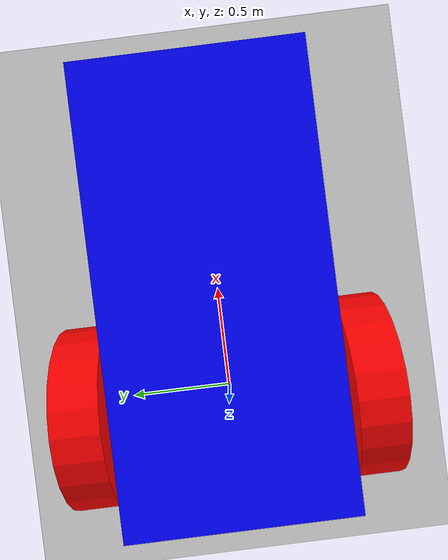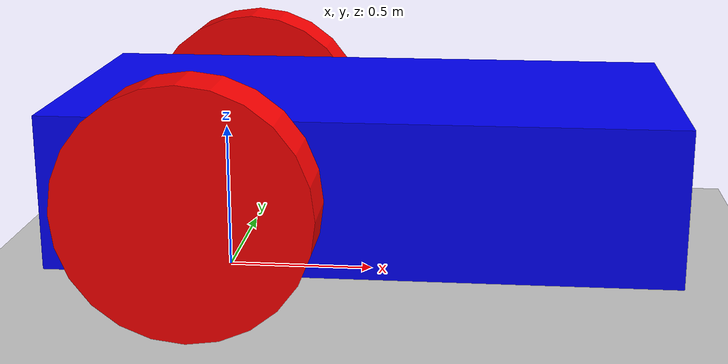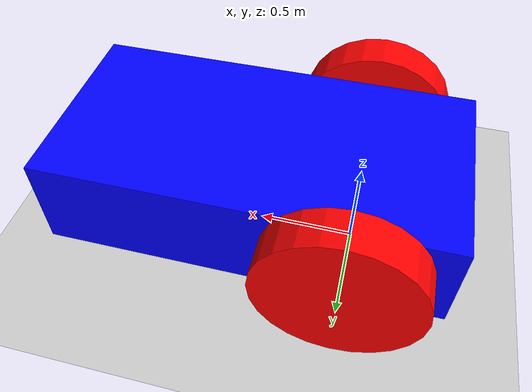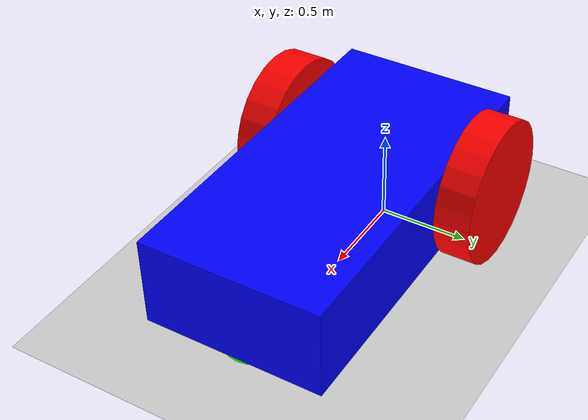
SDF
<?xml version="1.0" ?>
<sdf version="1.10">
    <!-- Define la versión del formato SDF (Simulation Description Format) -->
    <world name="car_world">
        <!-- Define un mundo llamado "car_world" -->
        <physics name="1ms" type="ignored">
            <!-- Configura las propiedades físicas del mundo -->
            <max_step_size>0.001</max_step_size>
            <!-- Tamaño máximo del paso de simulación -->
            <real_time_factor>1.0</real_time_factor>
            <!-- Factor de tiempo real (1.0 significa tiempo real) -->
        </physics>
        <plugin
            filename="gz-sim-physics-system"
            name="gz::sim::systems::Physics">
        </plugin>
        <!-- Plugin para el sistema de física -->
        <plugin
            filename="gz-sim-user-commands-system"
            name="gz::sim::systems::UserCommands">
        </plugin>
        <!-- Plugin para comandos de usuario -->
        <plugin
            filename="gz-sim-scene-broadcaster-system"
            name="gz::sim::systems::SceneBroadcaster">
        </plugin>
        <!-- Plugin para la difusión de la escena -->

        <light type="directional" name="sun">
            <!-- Define una luz direccional llamada "sun" -->
            <cast_shadows>true</cast_shadows>
            <!-- Habilita la proyección de sombras -->
            <pose>0 0 10 0 0 0</pose>
            <!-- Posición y orientación de la luz -->
            <diffuse>0.8 0.8 0.8 1</diffuse>
            <!-- Color difuso de la luz -->
            <specular>0.2 0.2 0.2 1</specular>
            <!-- Color especular de la luz -->
            <attenuation>
                <range>1000</range>
                <!-- Rango de atenuación de la luz -->
                <constant>0.9</constant>
                <!-- Atenuación constante -->
                <linear>0.01</linear>
                <!-- Atenuación lineal -->
                <quadratic>0.001</quadratic>
                <!-- Atenuación cuadrática -->
            </attenuation>
            <direction>-0.5 0.1 -0.9</direction>
            <!-- Dirección de la luz -->
        </light>

        <!-- Plugin para los sensores IMU -->
        <plugin
            filename="libignition-gazebo-imu-system.so"
            name="ignition::gazebo::systems::Imu">
        </plugin>

        <plugin
            filename="gz-sim-contact-system"
            name="gz::sim::systems::Contact">
        </plugin>

        <!-- Configuración de la interfaz gráfica -->
        <gui fullscreen="0">
            <!-- Plugin para la vista 3D de la simulación -->
            <plugin filename="GzScene3D" name="3D View">
                <ignition-gui>
                    <!-- Título de la ventana de la vista 3D -->
                    <title>3D View</title>
                    <!-- Propiedad para ocultar la barra de título -->
                    <property type="bool" key="showTitleBar">false</property>
                    <!-- Estado de la ventana (docked significa acoplada) -->
                    <property type="string" key="state">docked</property>
                </ignition-gui>

                <!-- Configuración del motor gráfico y la escena -->
                <!-- Motor gráfico utilizado (ogre2) -->
                <engine>ogre2</engine>
                <scene>
                    <!-- Luz ambiental de la escena -->
                    <ambient_light>0.1 0.1 0.1 1</ambient_light>
                    <!-- Color de fondo de la escena -->
                    <background_color>0.7 0.7 0.7 1</background_color>
                </scene>
            </plugin>

            <!-- Plugin para el control del mundo -->
            <plugin filename="WorldControl" name="World Control">
                <ignition-gui>
                    <!-- Título de la ventana de control del mundo -->
                    <title>World Control</title>
                    <!-- Propiedad para ocultar la barra de título -->
                    <property type="bool" key="showTitleBar">false</property>
                    <!-- Propiedad para desactivar el redimensionamiento -->
                    <property type="bool" key="reziable">false</property>
                    <!-- Altura de la ventana -->
                    <property type="double" key="height">72</property>
                    <!-- Ancho de la ventana -->
                    <property type="double" key="width">121</property>
                    <!-- Profundidad de la ventana (z-index) -->
                    <property type="double" key="z">1</property>
                    <!-- Estado de la ventana (floating significa flotante) -->
                    <property type="string" key="state">floating</property>
                    <!-- Anclaje de la ventana al objetivo "3D View" -->
                    <anchor target="3D View">
                        <!-- Línea de anclaje a la derecha -->
                        <line own="left" target="left"/>
                        <!-- Línea de anclaje en la parte inferior -->
                        <line own="bottom" target="bottom"/>
                    </anchor>
                </ignition-gui>

                <!-- Botón de play/pause -->
                <play_pause>true</play_pause>
                <!-- Botón de paso a paso -->
                <step>true</step>
                <!-- Iniciar en pausa -->
                <start_paused>true</start_paused>
                <!-- Servicio de control del mundo -->
                <service>/world/world_demo/control</service>
                <!-- Tópico de estadísticas del mundo -->
                <stats_topic>/world/world_demo/stats</stats_topic>
            </plugin>

            <!-- Plugin para las estadísticas del mundo -->
            <plugin filename="WorldStats" name="World Stats">
                <ignition-gui>
                    <!-- Título de la ventana de estadísticas del mundo -->
                    <title>World Stats</title>
                    <!-- Propiedad para ocultar la barra de título -->
                    <property type="bool" key="showTitleBar">false</property>
                    <!-- Propiedad para desactivar el redimensionamiento -->
                    <property type="bool" key="resizable">false</property>
                    <!-- Altura de la ventana -->
                    <property type="double" key="height">110</property>
                    <!-- Ancho de la ventana -->
                    <property type="double" key="width">290</property>
                    <!-- Profundidad de la ventana (z-index) -->
                    <property type="double" key="z">1</property>
                    <!-- Estado de la ventana (floating significa flotante) -->
                    <property type="string" key="state">floating</property>
                    <!-- Anclaje de la ventana al objetivo "3D View" -->
                    <anchor target="3D View">
                        <!-- Línea de anclaje a la derecha -->
                        <line own="right" target="right"/>
                        <!-- Línea de anclaje en la parte inferior -->
                        <line own="bottom" target="bottom"/>
                    </anchor>
                </ignition-gui>

                <!-- Mostrar tiempo de simulación -->
                <sim_time>true</sim_time>
                <!-- Mostrar tiempo real -->
                <real_time>true</real_time>
                <!-- Mostrar factor de tiempo real -->
                <real_time_factor>true</real_time_factor>
                <!-- Mostrar número de iteraciones -->
                <interations>true</interations>
                <!-- Tópico de estadísticas del mundo -->
                <topic>/world/world_demo/stats</topic>
            </plugin>

            <!-- Plugin para el árbol de entidades -->
            <plugin filename="EntityTree" name="Entity tree">
            </plugin>

            <plugin filename="keyPublisher" name="Key Publisher">
            </plugin>

        </gui>

        <model name="ground_plane">
            <!-- Define un modelo llamado "ground_plane" -->
            <static>true</static>
            <!-- Indica que el modelo es estático -->
            <link name="link">
                <!-- Define un enlace llamado "link" -->
                <collision name="collision">
                    <!-- Define una colisión llamada "collision" -->
                    <geometry>
                        <plane>
                            <!-- Define la geometría como un plano -->
                            <normal>0 0 1</normal>
                            <!-- Normal del plano -->
                        </plane>
                    </geometry>
                </collision>
                <visual name="visual">
                    <!-- Define una visualización llamada "visual" -->
                    <geometry>
                        <plane>
                            <!-- Define la geometría como un plano -->
                            <normal>0 0 1</normal>
                            <!-- Normal del plano -->
                            <size>100 100</size>
                            <!-- Tamaño del plano -->
                        </plane>
                    </geometry>
                    <material>
                        <!-- Define el material del plano -->
                        <ambient>0.8 0.8 0.8 1</ambient>
                        <!-- Color ambiental -->
                        <diffuse>0.8 0.8 0.8 1</diffuse>
                        <!-- Color difuso -->
                        <specular>0.8 0.8 0.8 1</specular>
                        <!-- Color especular -->
                    </material>
                </visual>
            </link>
        </model>

        <model name='vehicle_blue' canonical_link='chassis'>
            <!-- Define un modelo llamado "vehicle_blue" con un enlace canónico "chassis" -->
            <pose relative_to='world'>0 0 0 0 0 0</pose>
            <!-- Posición y orientación del modelo relativo al mundo -->

            <link name='chassis'>
                <!-- Define un enlace llamado "chassis" -->
                <pose relative_to='__model__'>0.5 0 0.4 0 0 0</pose>
                <!-- Posición y orientación del enlace relativo al modelo -->
                <inertial>
                    <!-- Propiedades inerciales del enlace -->
                    <mass>1.14395</mass>
                    <!-- Masa del enlace -->
                    <inertia>
                        <!-- Matriz de inercia -->
                        <ixx>0.095329</ixx>
                        <ixy>0</ixy>
                        <ixz>0</ixz>
                        <iyy>0.381317</iyy>
                        <iyz>0</iyz>
                        <izz>0.476646</izz>
                    </inertia>
                </inertial>
                <visual name='visual'>
                    <!-- Define una visualización llamada "visual" -->
                    <geometry>
                        <box>
                            <!-- Define la geometría como una caja -->
                            <size>2.0 1.0 0.5</size>
                            <!-- Tamaño de la caja -->
                        </box>
                    </geometry>
                    <material>
                        <!-- Define el material de la caja -->
                        <ambient>0.0 0.0 1.0 1</ambient>
                        <!-- Color ambiental -->
                        <diffuse>0.0 0.0 1.0 1</diffuse>
                        <!-- Color difuso -->
                        <specular>0.0 0.0 1.0 1</specular>
                        <!-- Color especular -->
                    </material>
                </visual>
                <collision name='collision'>
                    <!-- Define una colisión llamada "collision" -->
                    <geometry>
                        <box>
                            <!-- Define la geometría como una caja -->
                            <size>2.0 1.0 0.5</size>
                            <!-- Tamaño de la caja -->
                        </box>
                    </geometry>
                </collision>
            </link>

            <link name='left_wheel'>
                <!-- Define un enlace llamado "left_wheel" -->
                <pose relative_to="chassis">-0.5 0.6 0 -1.5707 0 0</pose>
                <!-- Posición y orientación del enlace relativo al chasis -->
                <inertial>
                    <!-- Propiedades inerciales del enlace -->
                    <mass>1</mass>
                    <!-- Masa del enlace -->
                    <inertia>
                        <!-- Matriz de inercia -->
                        <ixx>0.043333</ixx>
                        <ixy>0</ixy>
                        <ixz>0</ixz>
                        <iyy>0.043333</iyy>
                        <iyz>0</iyz>
                        <izz>0.08</izz>
                    </inertia>
                </inertial>
                <visual name='visual'>
                    <!-- Define una visualización llamada "visual" -->
                    <geometry>
                        <cylinder>
                            <!-- Define la geometría como un cilindro -->
                            <radius>0.4</radius>
                            <!-- Radio del cilindro -->
                            <length>0.2</length>
                            <!-- Longitud del cilindro -->
                        </cylinder>
                    </geometry>
                    <material>
                        <!-- Define el material del cilindro -->
                        <ambient>1.0 0.0 0.0 1</ambient>
                        <!-- Color ambiental -->
                        <diffuse>1.0 0.0 0.0 1</diffuse>
                        <!-- Color difuso -->
                        <specular>1.0 0.0 0.0 1</specular>
                        <!-- Color especular -->
                    </material>
                </visual>
                <collision name='collision'>
                    <!-- Define una colisión llamada "collision" -->
                    <geometry>
                        <cylinder>
                            <!-- Define la geometría como un cilindro -->
                            <radius>0.4</radius>
                            <!-- Radio del cilindro -->
                            <length>0.2</length>
                            <!-- Longitud del cilindro -->
                        </cylinder>
                    </geometry>
                </collision>
            </link>

            <link name='right_wheel'>
                <!-- Define un enlace llamado "right_wheel" -->
                <pose relative_to="chassis">-0.5 -0.6 0 -1.5707 0 0</pose>
                <!-- Posición y orientación del enlace relativo al chasis -->
                <inertial>
                    <!-- Propiedades inerciales del enlace -->
                    <mass>1</mass>
                    <!-- Masa del enlace -->
                    <inertia>
                        <!-- Matriz de inercia -->
                        <ixx>0.043333</ixx>
                        <ixy>0</ixy>
                        <ixz>0</ixz>
                        <iyy>0.043333</iyy>
                        <iyz>0</iyz>
                        <izz>0.08</izz>
                    </inertia>
                </inertial>
                <visual name='visual'>
                    <!-- Define una visualización llamada "visual" -->
                    <geometry>
                        <cylinder>
                            <!-- Define la geometría como un cilindro -->
                            <radius>0.4</radius>
                            <!-- Radio del cilindro -->
                            <length>0.2</length>
                            <!-- Longitud del cilindro -->
                        </cylinder>
                    </geometry>
                    <material>
                        <!-- Define el material del cilindro -->
                        <ambient>1.0 0.0 0.0 1</ambient>
                        <!-- Color ambiental -->
                        <diffuse>1.0 0.0 0.0 1</diffuse>
                        <!-- Color difuso -->
                        <specular>1.0 0.0 0.0 1</specular>
                        <!-- Color especular -->
                    </material>
                </visual>
                <collision name='collision'>
                    <!-- Define una colisión llamada "collision" -->
                    <geometry>
                        <cylinder>
                            <!-- Define la geometría como un cilindro -->
                            <radius>0.4</radius>
                            <!-- Radio del cilindro -->
                            <length>0.2</length>
                            <!-- Longitud del cilindro -->
                        </cylinder>
                    </geometry>
                </collision>
            </link>

            <frame name="caster_frame" attached_to='chassis'>
                <!-- Define un marco llamado "caster_frame" adjunto al chasis -->
                <pose>0.8 0 -0.2 0 0 0</pose>
                <!-- Posición y orientación del marco -->
            </frame>

            <link name='caster'>
                <!-- Define un enlace llamado "caster" -->
                <pose relative_to='caster_frame'/>
                <!-- Posición y orientación del enlace relativo al marco del caster -->
                <inertial>
                    <!-- Propiedades inerciales del enlace -->
                    <mass>1</mass>
                    <!-- Masa del enlace -->
                    <inertia>
                        <!-- Matriz de inercia -->
                        <ixx>0.016</ixx>
                        <ixy>0</ixy>
                        <ixz>0</ixz>
                        <iyy>0.016</iyy>
                        <iyz>0</iyz>
                        <izz>0.016</izz>
                    </inertia>
                </inertial>
                <visual name='visual'>
                    <!-- Define una visualización llamada "visual" -->
                    <geometry>
                        <sphere>
                            <!-- Define la geometría como una esfera -->
                            <radius>0.2</radius>
                            <!-- Radio de la esfera -->
                        </sphere>
                    </geometry>
                    <material>
                        <!-- Define el material de la esfera -->
                        <ambient>0.0 1 0.0 1</ambient>
                        <!-- Color ambiental -->
                        <diffuse>0.0 1 0.0 1</diffuse>
                        <!-- Color difuso -->
                        <specular>0.0 1 0.0 1</specular>
                        <!-- Color especular -->
                    </material>
                </visual>
                <collision name='collision'>
                    <!-- Define una colisión llamada "collision" -->
                    <geometry>
                        <sphere>
                            <!-- Define la geometría como una esfera -->
                            <radius>0.2</radius>
                            <!-- Radio de la esfera -->
                        </sphere>
                    </geometry>
                </collision>
            </link>

            <joint name='left_wheel_joint' type='revolute'>
                <!-- Define una articulación llamada "left_wheel_joint" de tipo "revolute" -->
                <pose relative_to='left_wheel'/>
                <!-- Posición y orientación de la articulación relativa a la rueda izquierda -->
                <parent>chassis</parent>
                <!-- Enlace padre de la articulación -->
                <child>left_wheel</child>
                <!-- Enlace hijo de la articulación -->
                <axis>
                    <!-- Define el eje de la articulación -->
                    <xyz expressed_in='__model__'>0 1 0</xyz>
                    <!-- Dirección del eje en el marco del modelo -->
                    <limit>
                        <!-- Límites del movimiento de la articulación -->
                        <lower>-1.79769e+308</lower>
                        <!-- Límite inferior (infinito negativo) -->
                        <upper>1.79769e+308</upper>
                        <!-- Límite superior (infinito positivo) -->
                    </limit>
                </axis>
            </joint>

            <joint name='right_wheel_joint' type='revolute'>
                <!-- Define una articulación llamada "right_wheel_joint" de tipo "revolute" -->
                <pose relative_to='right_wheel'/>
                <!-- Posición y orientación de la articulación relativa a la rueda derecha -->
                <parent>chassis</parent>
                <!-- Enlace padre de la articulación -->
                <child>right_wheel</child>
                <!-- Enlace hijo de la articulación -->
                <axis>
                    <!-- Define el eje de la articulación -->
                    <xyz expressed_in='__model__'>0 1 0</xyz>
                    <!-- Dirección del eje en el marco del modelo -->
                    <limit>
                        <!-- Límites del movimiento de la articulación -->
                        <lower>-1.79769e+308</lower>
                        <!-- Límite inferior (infinito negativo) -->
                        <upper>1.79769e+308</upper>
                        <!-- Límite superior (infinito positivo) -->
                    </limit>
                </axis>
            </joint>

            <joint name='caster_wheel' type='ball'>
                <!-- Define una articulación llamada "caster_wheel" de tipo "ball" -->
                <parent>chassis</parent>
                <!-- Enlace padre de la articulación -->
                <child>caster</child>
                <!-- Enlace hijo de la articulación -->
            </joint>

            <plugin
                filename="gz-sim-diff-drive-system"
                name="gz::sim::systems::DiffDrive">
                <left_joint>left_wheel_joint</left_joint>
                <right_joint>right_wheel_joint</right_joint>
                <wheel_separation>1.2</wheel_separation>
                <wheel_radius>0.4</wheel_radius>
                <odom_publish_frequency>1</odom_publish_frequency>
                <topic>cmd_vel</topic>
            </plugin>

        </model>
    </world>
</sdf>
